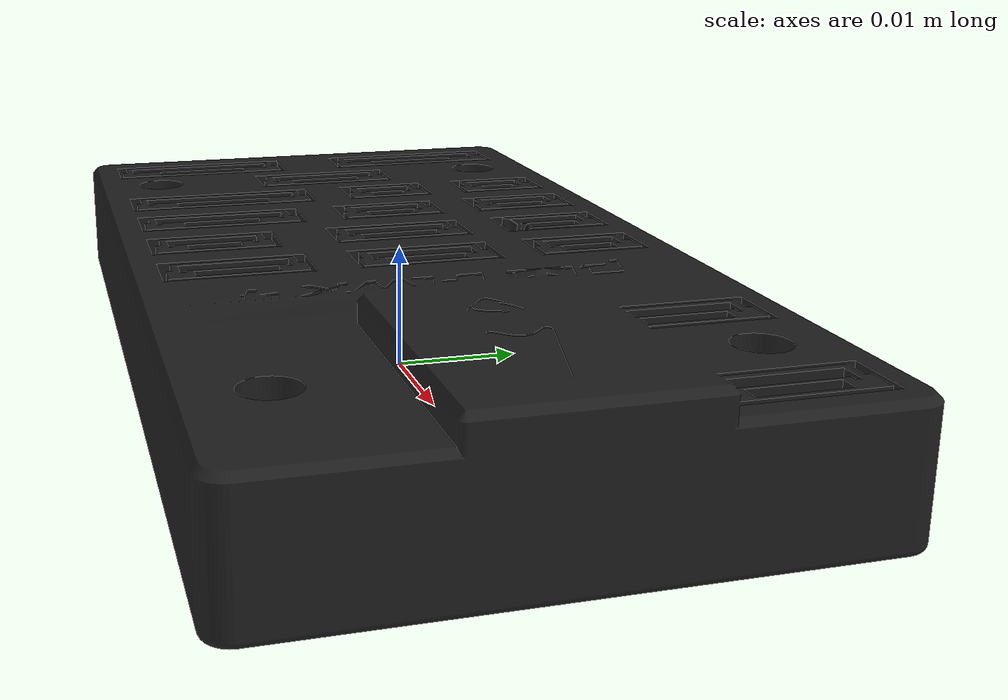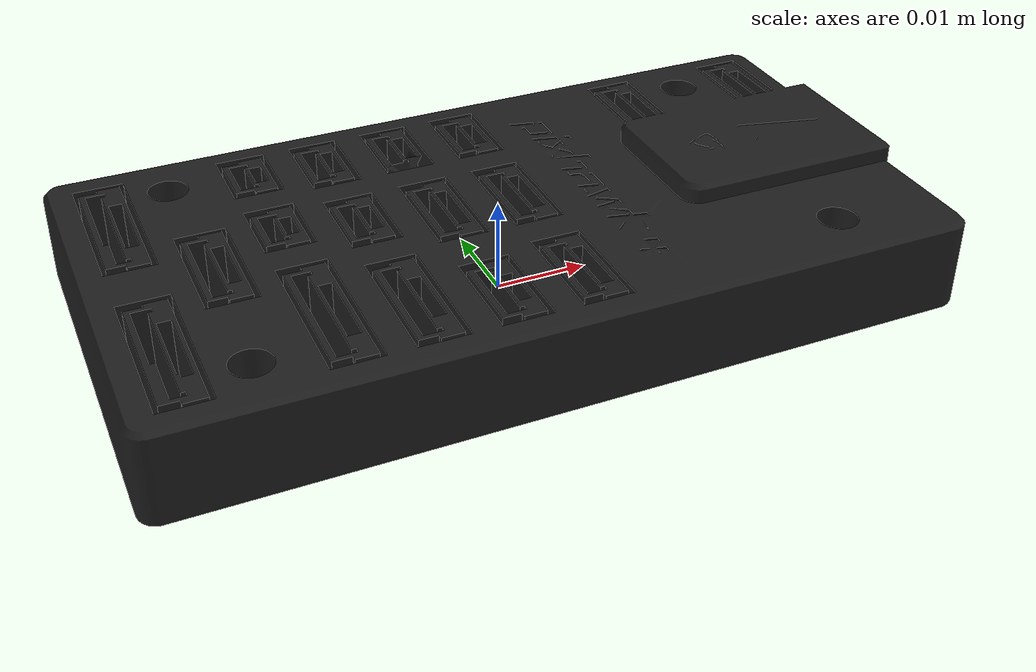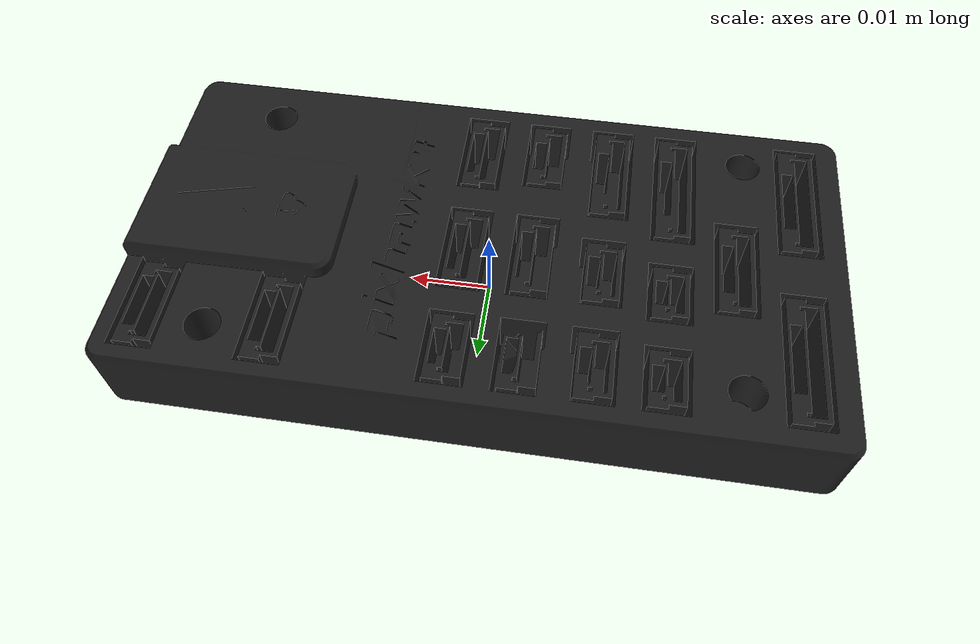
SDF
<?xml version="1.0" ?>
<sdf version="1.5">

  <model name="pixhawk">

    <link name="link">

      <inertial>
        <mass>0.038</mass>
        <inertia>
          <ixx>2.8899759404666665e-05</ixx>
          <iyy>2.1819023843999995e-05</iyy>
          <izz>8.616093260666668e-06</izz>
        </inertia>
      </inertial>

      <collision name='base_link_fixed_joint_lump__Laser_down_collision_8'>
        <pose frame=''>0 0 0 0 0 0</pose>
        <geometry>
          <mesh>
            <scale>1 1 1</scale>
            <uri>model://pixhawk/meshes/pixhawk.STL</uri>
          </mesh>
        </geometry>
      </collision>
      <visual name='base_link_fixed_joint_lump__Laser_down_visual_8'>
        <pose frame=''>0 0 0 0 0 0</pose>
        <geometry>
          <mesh>
            <scale>1 1 1</scale>
            <uri>model://pixhawk/meshes/pixhawk.STL</uri>
          </mesh>
        </geometry>
        <material>
          <script>
            <name>Gazebo/FlatBlack</name>
            <uri>file://media/materials/scripts/gazebo.material</uri>
          </script>
        </material>
      </visual>

      <sensor name='mpu-6000' type='imu'>
        <always_on>true</always_on>
        <update_rate>300</update_rate>
        <imu>
          <angular_velocity>
            <x>
              <noise type="gaussian">
               <mean>0</mean>
               <stddev>0.0002</stddev>
               <bias_mean>7.5e-06</bias_mean>
               <bias_stddev>8e-07</bias_stddev>
              </noise>
            </x>
            <y>
              <noise type="gaussian">
               <mean>0</mean>
               <stddev>0.0002</stddev>
               <bias_mean>7.5e-06</bias_mean>
               <bias_stddev>8e-07</bias_stddev>
              </noise>
            </y>
            <z>
              <noise type="gaussian">
               <mean>0</mean>
               <stddev>0.0002</stddev>
               <bias_mean>7.5e-06</bias_mean>
               <bias_stddev>8e-07</bias_stddev>
              </noise>
            </z>
          </angular_velocity>

          <linear_acceleration>
            <x>
              <noise type="gaussian">
                <mean>0</mean>
                <stddev>0.017</stddev>
                <bias_mean>0.1</bias_mean>
                <bias_stddev>0.001</bias_stddev>
              </noise>
            </x>
            <y>
              <noise type="gaussian">
                <mean>0</mean>
                <stddev>0.017</stddev>
                <bias_mean>0.1</bias_mean>
                <bias_stddev>0.001</bias_stddev>
              </noise>
            </y>
            <z>
              <noise type="gaussian">
                <mean>0</mean>
                <stddev>0.017</stddev>
                <bias_mean>0.1</bias_mean>
                <bias_stddev>0.001</bias_stddev>
              </noise>
            </z>
          </linear_acceleration>
        </imu>
      </sensor>

      <sensor name='ms5611' type='altimeter'>
        <pose>0 0 0 0 0 0</pose>
        <always_on>true</always_on>
        <update_rate>300</update_rate>
        <altimeter>
          <vertical_position>
            <noise type="gaussian">
              <mean>0.0</mean>
              <stddev>1.0</stddev>
              <bias_mean>0.0</bias_mean>
              <bias_stddev>1.0</bias_stddev>
            </noise>
          </vertical_position>
          <vertical_velocity>
            <noise type="gaussian">
              <mean>0.0</mean>
              <stddev>1.0</stddev>
              <bias_mean>0.0</bias_mean>
              <bias_stddev>1.0</bias_stddev>
            </noise>
          </vertical_velocity>
        </altimeter>
      </sensor>

      <sensor name="LSM303D" type="magnetometer">
        <always_on>true</always_on>
        <update_rate>300</update_rate>
        <magnetometer>
          <x>
            <noise type="gaussian">
             <mean>0</mean>
             <stddev>0.0002</stddev>
             <bias_mean>7.5e-06</bias_mean>
             <bias_stddev>8e-07</bias_stddev>
            </noise>
          </x>
          <y>
            <noise type="gaussian">
             <mean>0</mean>
             <stddev>0.0002</stddev>
             <bias_mean>7.5e-06</bias_mean>
             <bias_stddev>8e-07</bias_stddev>
            </noise>
          </y>
          <z>
            <noise type="gaussian">
             <mean>0</mean>
             <stddev>0.0002</stddev>
             <bias_mean>7.5e-06</bias_mean>
             <bias_stddev>8e-07</bias_stddev>
            </noise>
          </z>
        </magnetometer>

      </sensor>

    </link>

  </model>

</sdf>

<!-- vim: set et ft=xml fenc=utf-8 ff=unix sts=0 sw=2 ts=2 : -->
